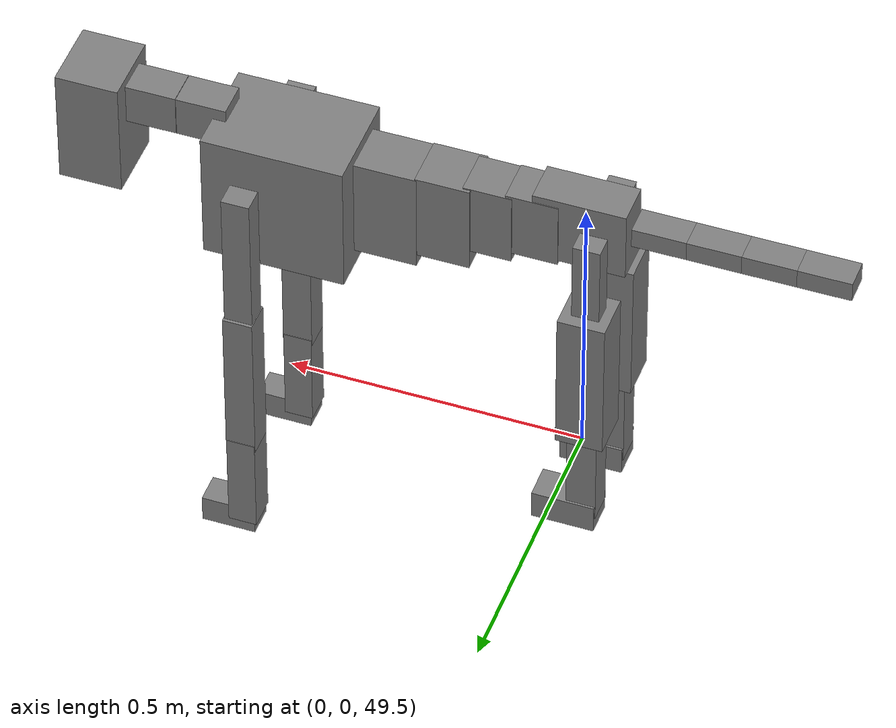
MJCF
<mujoco model="dog">

    <default>
        <joint armature="0.02" stiffness="1" damping="0.2" limited="true"/>
        <geom condim="3" friction="1 0.05 0.05" margin="0.01"/>
        <motor ctrllimited="true" ctrlrange="-1.0 1.0" forcelimited="true" gear="50"/>
    </default>

    <compiler inertiafromgeom="true" angle="radian"/>

    <option timestep="0.016" iterations="50" tolerance="1e-10" solver="Newton" jacobian="dense" cone="pyramidal"/>

    <size nconmax="20000" njmax="60000" nstack="5000000"/>
    <visual>
        <map force="0.1" zfar="30"/>
        <rgba haze="0.15 0.25 0.35 1"/>
        <quality shadowsize="2048"/>
        <global offwidth="800" offheight="800"/>
    </visual>

    <asset>
        <texture type="skybox" builtin="gradient" rgb1="0.3 0.5 0.7" rgb2="0 0 0" width="512" height="512"/>
        <texture name="texplane" type="2d" builtin="checker" rgb1=".2 .3 .4" rgb2=".1 0.15 0.2" width="512" height="512"
                 mark="cross" markrgb=".8 .8 .8"/>
        <texture name="texgeom" type="cube" builtin="flat" mark="cross" width="127" height="1278" rgb1="0.8 0.6 0.4"
                 rgb2="0.8 0.6 0.4" markrgb="1 1 1" random="0.01"/>

        <material name="matplane" reflectance="0.3" texture="texplane" texrepeat="1 1" texuniform="true"/>
        <material name="matgeom" texture="texgeom" texuniform="true" rgba="0.8 0.6 .4 1"/>
    </asset>

    <worldbody>
        <geom name="floor" pos="0 0 0" size="0 0 .25" type="plane" material="matplane" condim="3"/>

        <light directional="false" diffuse=".2 .2 .2" specular="0 0 0" pos="0 0 5" dir="0 0 -1" castshadow="false"/>
        <light mode="targetbodycom" target="torso" directional="false" diffuse=".8 .8 .8" specular="0.3 0.3 0.3"
               pos="0 0 4.0" dir="0 0 -1"/>

        <body name="root" pos="0 0 50">
            <freejoint name="root_1"/>
            <geom type="box" pos="0 0 -0.02" size="0.0774  0.0358  0.063" density="2030"/>

            <body name="spine1" pos="0.054 0 0">
                <joint name="spine1_y" axis="0 1 0" range="0 0.7" limited="true"/>
                <geom type="box" pos="0.02375 0 -0.03" size="0.04375  0.0375  0.05985" density="2030"/>

                <body name="spine2" pos="0.0612 0 0">
                    <joint name="spine2_y" axis="0 1 0" range="-0.15 0.15" limited="true"/>
                    <geom type="box" pos="0.03555  0  -0.04" size="0.04055  0.039  0.06615" density="2030"/>

                    <body name="spine3" pos="0.0730 0 0">
                        <joint name="spine3_y" axis="0 1 0" range="-0.15 0.15" limited="true"/>
                        <geom type="box" pos="0.03555  0  -0.057" size="0.04555  0.0445  0.081" density="2030"/>

                        <body name="spine4" pos="0.0780 0 0">
                            <joint name="spine4_y" axis="0 1 0" range="-0.15 0.15" limited="true"/>
                            <geom type="box" pos="0.05265  0  -0.07" size="0.05265  0.045  0.09135" density="2030"/>

                            <body name="torso" pos="0.1082 0 0">
                                <joint name="torso_y" axis="0 1 0" range="-0.15 0.15" limited="true"/>
                                <geom type="box" pos="0.11925  0  -0.085" size="0.11925  0.085  0.11745"
                                      density="2030"/>

                                <body name="neck1" pos="0.2160  0   0.0180">
                                    <joint name="neck1_y" axis="0 1 0" range="-1.2  -1" limited="true"/>
                                    <geom type="box" pos="0.0423  0  0" size="0.0423  0.03  0.036" density="2325"/>

                                    <body name="neck2" pos="0.0853  0  0">
                                        <joint name="neck2_y" axis="0 1 0" range="0.1  0" limited="true"/>
                                        <geom type="box" pos="0.0423  0  0" size="0.0423  0.03  0.036" density="2325"/>

                                        <body name="head" pos="0.0853  0  0">
                                            <joint name="head_y" axis="0 1 0" range="-0.3  -0.2" limited="true"/>
                                            <geom type="box" pos="0.0531  0  -0.055" size="0.0531  0.06  0.1044"
                                                  density="4030"/>

                                        </body>
                                    </body>
                                </body>

                                <body name="front_shoulder" pos="0.156  0   -0.0480">
                                    <joint name="front_shoulder_y" axis="0 1 0" range="-1 1.5" limited="true"/>
                                    <geom type="box" pos="0 0.13 -0.1142" size="0.0236  0.0202  0.1409" density="1158"/>
                                    <geom type="box" pos="0 -0.13 -0.1142" size="0.0236  0.0202  0.1409"
                                          density="1158"/>

                                    <body name="front_elbow" pos="0  0  -0.2284">
                                        <joint name="front_elbow_y" axis="0 1 0" range="-2 0" limited="true"/>
                                        <geom type="box" pos="0 0.13 -0.1414" size="0.0250  0.0256  0.1414"
                                              density="1081"/>
                                        <geom type="box" pos="0 -0.13 -0.1414" size="0.0250  0.0256  0.1414"
                                              density="1081"/>

                                        <body name="front_wrist" pos="0  0  -0.2827">
                                            <joint name="front_wrist_y" axis="0 1 0" range="-0.2 0" limited="true"/>
                                            <geom type="box" pos="0 0.13 -0.0767" size="0.0241  0.0268  0.0899"
                                                  density="1664"/>
                                            <geom type="box" pos="0 -0.13 -0.0767" size="0.0241  0.0268  0.0899"
                                                  density="1664"/>

                                            <body name="front_finger_end" pos="0  0  -0.1535">
                                                <joint name="front_finger_y" axis="0 1 0" range="-0.4 1"
                                                       limited="true"/>
                                                <geom type="box" pos="0.0251  0.13  -0.0091"
                                                      size="0.0459  0.0251  0.0241" density="1515"/>
                                                <geom type="box" pos="0.0251  -0.13  -0.0091"
                                                      size="0.0459  0.0251  0.0241" density="1515"/>

                                            </body>

                                        </body>
                                    </body>
                                </body>

                            </body>
                        </body>
                    </body>
                </body>
            </body>

            <body name="back_hip" pos="-0.03 0 -0.018">
                <joint name="back_hip_y" axis="0 1 0" range="-1.5 0.3" limited="true"/>
                <geom type="box" pos="0 0.07 -0.0694" size="0.0228  0.0179  0.0922" density="1154"/>
                <geom type="box" pos="0 -0.07 -0.0694" size="0.0228  0.0179  0.0922" density="1154"/>

                <body name="back_knee" pos="0  0  -0.1388">
                    <joint name="back_knee_y" axis="0 1 0" range="0 2.8" limited="true"/>
                    <geom type="box" pos="0 0.07 -0.1158" size="0.0395  0.0389  0.1314" density="1227"/>
                    <geom type="box" pos="0 -0.07 -0.1158" size="0.0395  0.0389  0.1314" density="1227"/>

                    <body name="back_ankle" pos="0  0  -0.2316">
                        <joint name="back_ankle_y" axis="0 1 0" range="-2.2 0" limited="true"/>
                        <geom type="box" pos="0 0.07 -0.0879" size="0.0250  0.0250  0.0992" density="1284"/>
                        <geom type="box" pos="0 -0.07 -0.0879" size="0.0250  0.0250  0.0992" density="1284"/>

                        <body name="back_toe_end" pos="0  0  -0.1758">
                            <joint name="back_toe_y" axis="0 1 0" range="-0.4 1" limited="true"/>
                            <geom type="box" pos="0.0289  0.07  -0.0105" size="0.0529  0.0289  0.0255" density="1515"/>
                            <geom type="box" pos="0.0289  -0.07  -0.0105" size="0.0529  0.0289  0.0255" density="1515"/>

                        </body>
                    </body>
                </body>
            </body>

            <body name="tail1" pos="-0.074 0 -0.006">
                <joint name="tail1_y" axis="0 1 0" range="-0.2 0.2" limited="true"/>
                <geom type="box" pos="-0.0536  0  0" size="0.045  0.025  0.0175" density="1587"/>

                <body name="tail2" pos="-0.09 0 0">
                    <joint name="tail2_y" axis="0 1 0" range="-0.2 0.2" limited="true"/>
                    <geom type="box" pos="-0.0536  0  0" size="0.045  0.025  0.0175" density="1587"/>

                    <body name="tail3" pos="-0.09 0 0">
                        <joint name="tail3_y" axis="0 1 0" range="-0.2 0.2" limited="true"/>
                        <geom type="box" pos="-0.0536  0  0" size="0.045  0.025  0.0175" density="1587"/>

                        <body name="tail4" pos="-0.09 0 0">
                            <joint name="tail4_y" axis="0 1 0" range="-0.2 0.2" limited="true"/>
                            <geom type="box" pos="-0.0536  0  0" size="0.045  0.025  0.0175" density="1587"/>

                        </body>
                    </body>
                </body>
            </body>
        </body>
    </worldbody>

    <actuator>
        <motor joint="spine1_y" forcerange="-150 150     "/>
        <motor joint="spine2_y" forcerange="-150 150     "/>
        <motor joint="spine3_y" forcerange="-150 150     "/>
        <motor joint="spine4_y" forcerange="-150 150     "/>
        <motor joint="torso_y" forcerange="-150 150     "/>
        <motor joint="neck1_y" forcerange="-100 100       "/>
        <motor joint="neck2_y" forcerange="-100 100       "/>
        <motor joint="head_y" forcerange="-150 150       "/>
        <motor joint="front_shoulder_y" forcerange="-109.89 124.47"/>
        <motor joint="front_elbow_y" forcerange="-116.82 169.29"/>
        <motor joint="front_wrist_y" forcerange="-95.31 119.35"/>
        <motor joint="front_finger_y" forcerange="-28.30 65.30"/>
        <motor joint="back_hip_y" forcerange="-226.71 211.58"/>
        <motor joint="back_knee_y" forcerange="-388.27 377.77"/>
        <motor joint="back_angle_y" forcerange="-59.49 240.37"/>
        <motor joint="back_toe_y" forcerange="-122.54 28.42"/>
        <motor joint="tail1_y" forcerange="-50 50     "/>
        <motor joint="tail2_y" forcerange="-50 50     "/>
        <motor joint="tail3_y" forcerange="-50 50     "/>
        <motor joint="tail4_y" forcerange="-50 50     "/>
    </actuator>
</mujoco>
